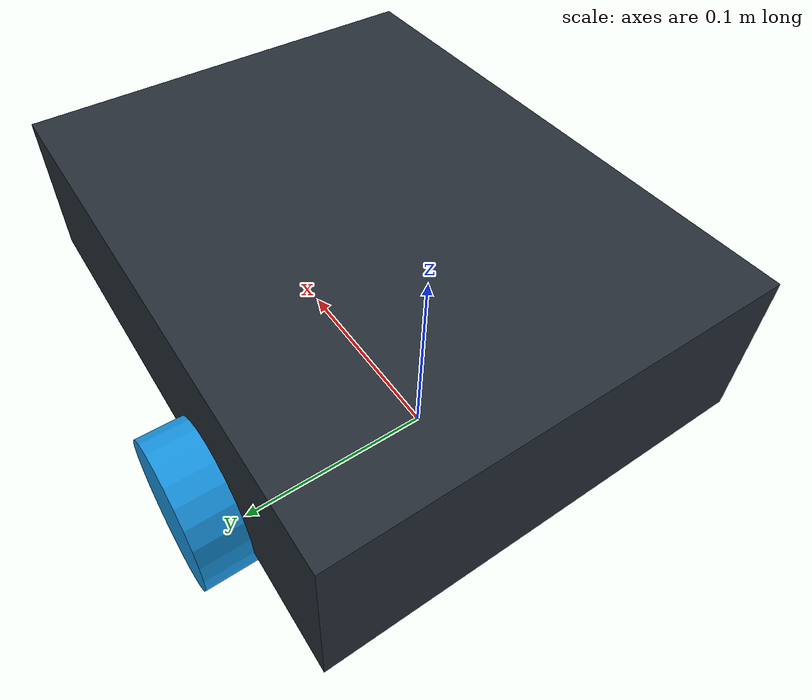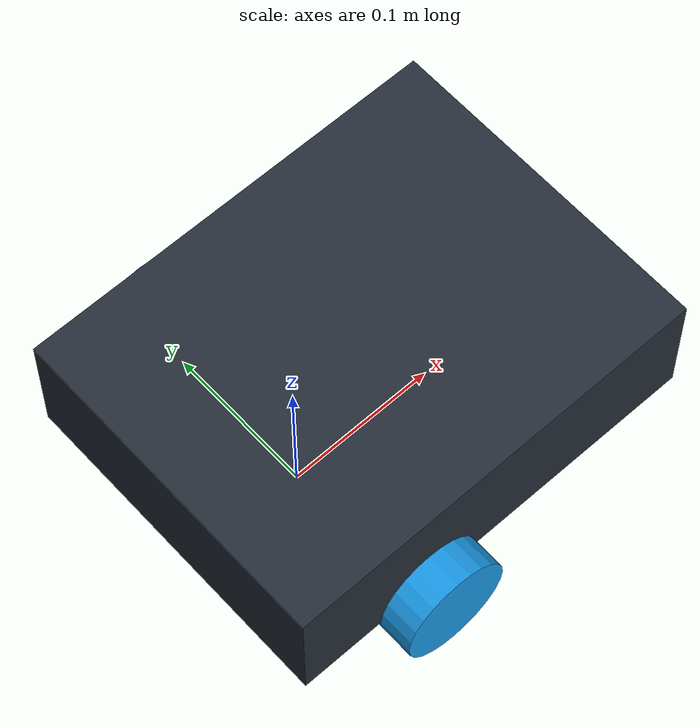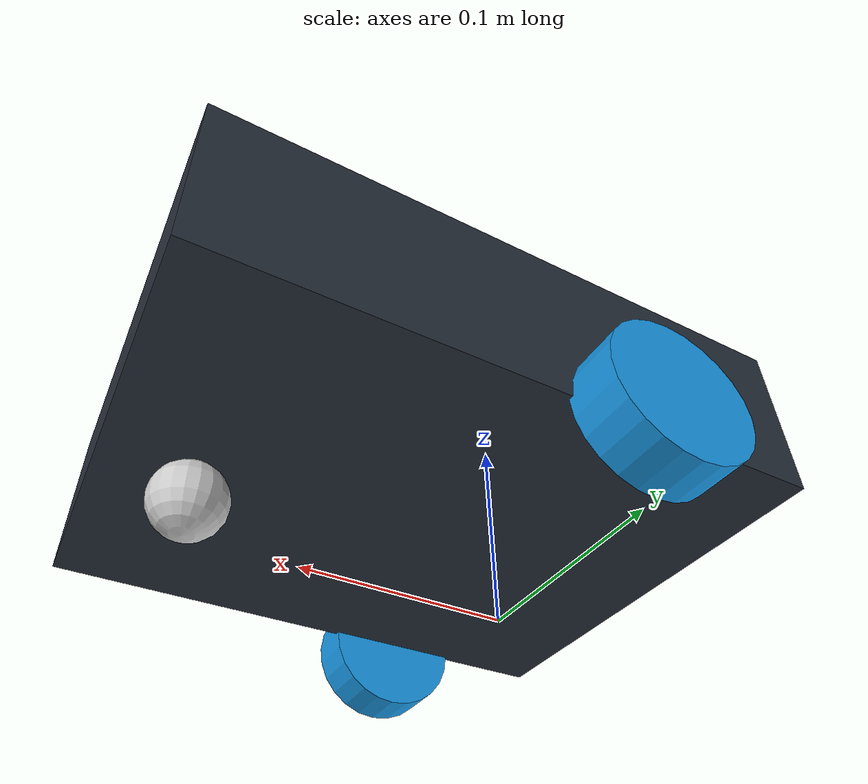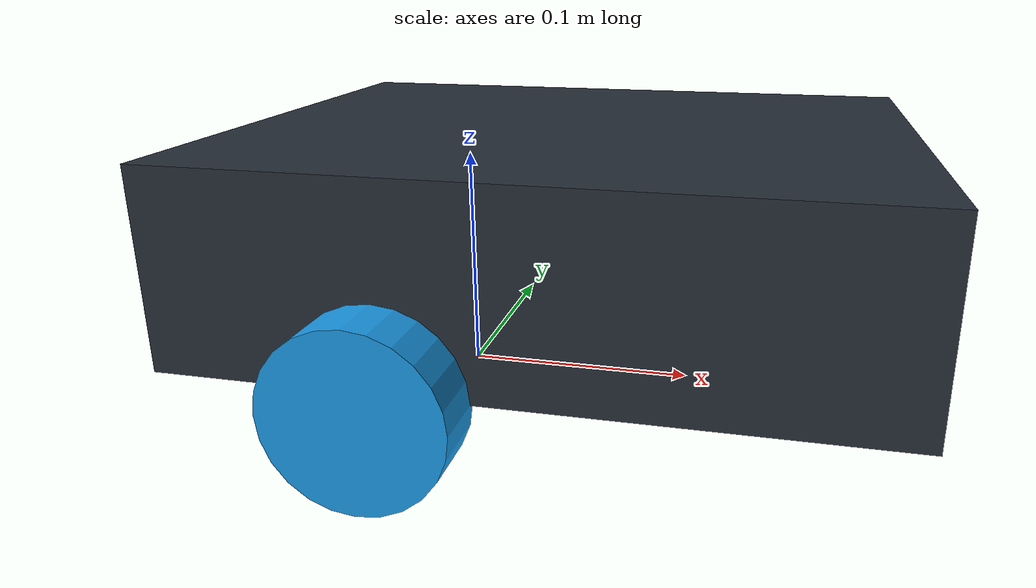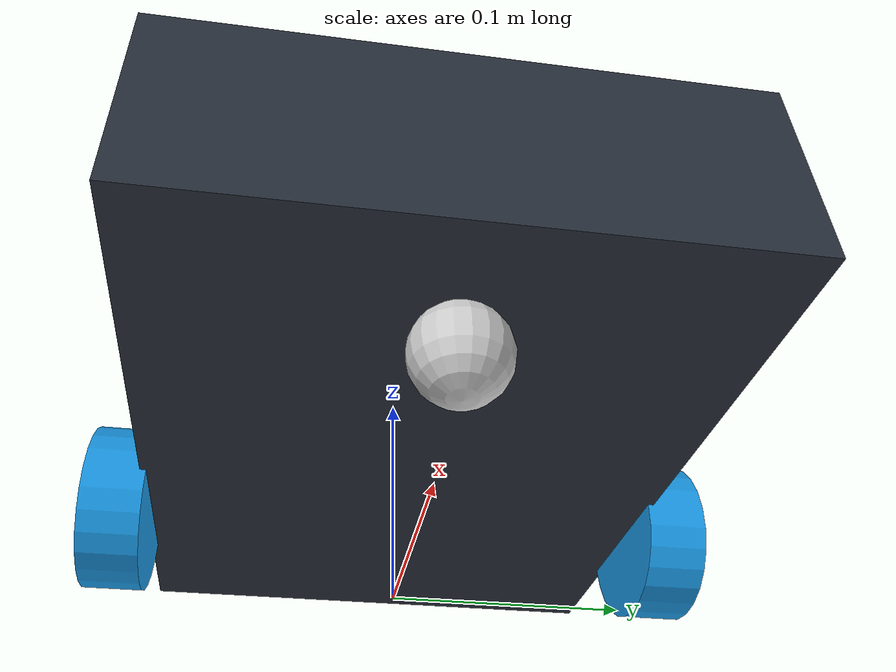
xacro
<?xml version="1.0"?>
<robot xmlns:xacro="http://www.ros.org/wiki/xacro">

  <!-- Materials -->
  <material name="chassis_color">
    <color rgba="0.15 0.18 0.22 1.0"/>
  </material>

  <material name="wheel_color">
    <color rgba="0.1 0.6 0.9 1.0"/>
  </material>

  <material name="caster_color">
    <color rgba="0.8 0.8 0.8 1.0"/>
  </material>

  <!-- BASE FOOTPRINT LINK -->
  <link name="base_footprint"/>

  <joint name="base_footprint_joint" type="fixed">
    <parent link="base_footprint"/>
    <child link="base_link"/>
    <origin xyz="0 0 0.035" rpy="0 0 0"/>
  </joint>

  <!-- BASE LINK (CHASSIS) -->
  <link name="base_link">
    <visual>
      <origin xyz="0.05 0 0.04"/>
      <geometry>
        <box size="0.28 0.22 0.08"/>
      </geometry>
      <material name="chassis_color"/>
    </visual>
    <collision>
      <origin xyz="0.05 0 0.04"/>
      <geometry>
        <box size="0.28 0.22 0.08"/>
      </geometry>
    </collision>
    <xacro:inertial_box mass="1.5" x="0.28" y="0.22" z="0.08">
      <origin xyz="0.05 0 0.04" rpy="0 0 0"/>
    </xacro:inertial_box>
  </link>

  <gazebo reference="base_link">
    <material>Gazebo/DarkGrey</material>
  </gazebo>

  <!-- LEFT WHEEL -->
  <joint name="left_wheel_joint" type="continuous">
    <parent link="base_link"/>
    <child link="left_wheel_link"/>
    <origin xyz="0 0.12 0" rpy="-${pi/2} 0 0"/>
    <axis xyz="0 0 1"/>
  </joint>

  <link name="left_wheel_link">
    <visual>
      <geometry>
        <cylinder radius="0.035" length="0.025"/>
      </geometry>
      <material name="wheel_color"/>
    </visual>
    <collision>
      <geometry>
        <cylinder radius="0.035" length="0.025"/>
      </geometry>
    </collision>
    <xacro:inertial_cylinder mass="0.1" length="0.025" radius="0.035">
      <origin xyz="0 0 0" rpy="0 0 0"/>
    </xacro:inertial_cylinder>
  </link>

  <gazebo reference="left_wheel_link">
    <material>Gazebo/Blue</material>
    <mu1 value="1.0"/>
    <mu2 value="1.0"/>
  </gazebo>

  <!-- RIGHT WHEEL -->
  <joint name="right_wheel_joint" type="continuous">
    <parent link="base_link"/>
    <child link="right_wheel_link"/>
    <origin xyz="0 -0.12 0" rpy="${pi/2} 0 0"/>
    <axis xyz="0 0 -1"/>
  </joint>

  <link name="right_wheel_link">
    <visual>
      <geometry>
        <cylinder radius="0.035" length="0.025"/>
      </geometry>
      <material name="wheel_color"/>
    </visual>
    <collision>
      <geometry>
        <cylinder radius="0.035" length="0.025"/>
      </geometry>
    </collision>
    <xacro:inertial_cylinder mass="0.1" length="0.025" radius="0.035">
      <origin xyz="0 0 0" rpy="0 0 0"/>
    </xacro:inertial_cylinder>
  </link>

  <gazebo reference="right_wheel_link">
    <material>Gazebo/Blue</material>
    <mu1 value="1.0"/>
    <mu2 value="1.0"/>
  </gazebo>

  <!-- CASTER WHEEL (FRONT) -->
  <joint name="caster_wheel_joint" type="fixed">
    <parent link="base_link"/>
    <child link="caster_wheel_link"/>
    <origin xyz="0.15 0 -0.0175"/>
  </joint>

  <link name="caster_wheel_link">
    <visual>
      <geometry>
        <sphere radius="0.0175"/>
      </geometry>
      <material name="caster_color"/>
    </visual>
    <collision>
      <geometry>
        <sphere radius="0.0175"/>
      </geometry>
    </collision>
    <xacro:inertial_sphere mass="0.05" radius="0.0175">
      <origin xyz="0 0 0" rpy="0 0 0"/>
    </xacro:inertial_sphere>
  </link>

  <gazebo reference="caster_wheel_link">
    <material>Gazebo/White</material>
    <mu1 value="0.001"/>
    <mu2 value="0.001"/>
  </gazebo>

</robot>
